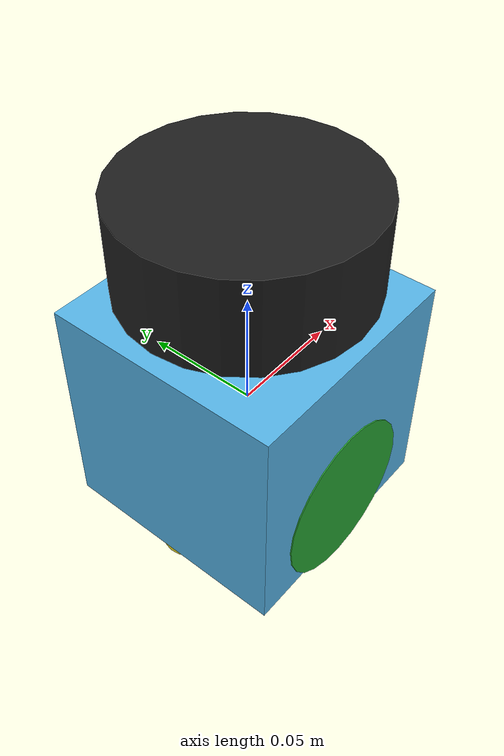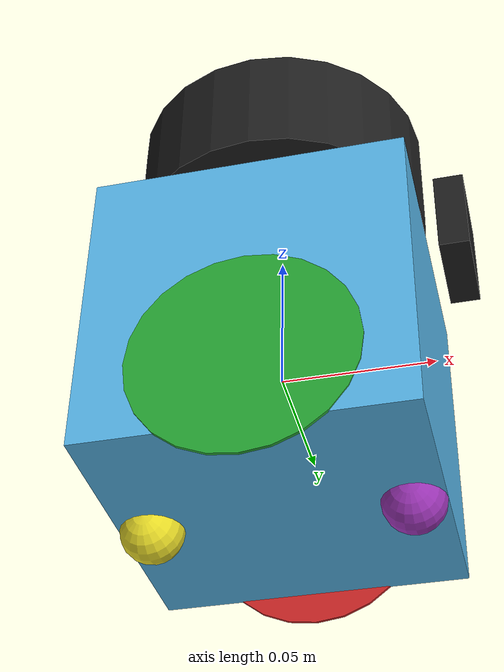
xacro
<?xml version="1.0"?>
<robot xmlns:xacro="http://www.ros.org/wiki/xacro" name="my_robot">
    <xacro:arg name='robot_name' default='my_robot'/>
    <xacro:property name='robot_name' value='$(arg robot_name)'/>
    <xacro:include filename="$(find my_robot_description)/urdf/my_robot.gazebo.xacro" />

    <xacro:property name="body_width" value="0.1"/>
    <xacro:property name="body_lenght" value="0.1"/>
    <xacro:property name="body_height" value="0.1"/>
    <xacro:property name="wheel_width" value="0.001"/>
    <xacro:property name="wheel_radius" value="0.035"/>

    <xacro:gazebo_elements robot_name='${robot_name}'/>

    <link name="base_link">
    </link>

    <joint name="base_link_joint" type="fixed">
        <origin rpy="0 0 0" xyz="0 0 0" />
        <parent link="base_link" />
        <child link="chassis" />
    </joint>

    <link name="chassis">
        <visual>
            <geometry>
                <box size="${body_width} ${body_lenght} ${body_height}"/>
            </geometry>
        </visual>

        <collision>
            <geometry>
                <box size="${body_width} ${body_lenght} ${body_height}"/>
            </geometry>
        </collision>

        <inertial>
            <mass value="0.5"/>
            <origin rpy="0 0 0" xyz="0 0 0"/>
            <inertia ixx="0.0008333333333333335" ixy="0" ixz="0" iyy="0.0008333333333333335" iyz="0" izz="0.0008333333333333335"/>
        </inertial>
    </link>

    <link name='camera_link'>
        <visual>
            <geometry>
                <box size='0.01 0.03 0.03'/>
            </geometry>
        </visual>
    </link>

    <joint name='camera_joint' type='fixed'>
        <parent link='chassis'/>
        <child link='camera_link'/>
        <origin xyz='0.06 0 0.05' rpy='0 0 0'/>
    </joint>

    <link name="laser_link">
        <visual>
            <geometry>
                <cylinder radius="0.05" length="0.04"/> </geometry>
            <material name="black"/>
        </visual>
        <collision>
            <geometry>
                <cylinder radius="0.05" length="0.04"/>
            </geometry>
        </collision>
        <inertial>
            <mass value="0.1"/>
            <inertia ixx="0.000075833" ixy="0" ixz="0" iyy="0.000075833" iyz="0" izz="0.000125"/>
        </inertial>
    </link>

    <joint name="laser_joint" type="fixed">
        <parent link="chassis"/>
        <child link="laser_link"/>
        <origin xyz="0 0 0.08" rpy="0 0 0"/>
    </joint>

    <!-- Wheel Macro -->
    <xacro:macro name="wheel" params="wheel_name">
        <link name="${wheel_name}">
            <visual>
                <origin rpy="0 1.5707 1.5707" xyz="0 0 0"/>
                <geometry>
                    <cylinder length="${wheel_width}" radius="${wheel_radius}"/>
                </geometry>
            </visual>

            <collision>
                <origin rpy="0 1.5707 1.5707" xyz="0 0 0"/>
                <geometry>
                    <cylinder length="${wheel_width}" radius="${wheel_radius}"/>
                </geometry>
            </collision>

            <inertial>
                <origin rpy="0 1.5707 1.5707" xyz="0 0 0"/>
                <mass value="0.05"/>
                <inertia ixx="1.531666666666667e-05" ixy="0" ixz="0" iyy="1.531666666666667e-05" iyz="0" izz="3.0625000000000006e-05"/>
            </inertial>
        </link>
    </xacro:macro>

    <!-- Wheel Left -->
    <xacro:wheel wheel_name="left_wheel" />

    <!-- Wheel Right -->
    <xacro:wheel wheel_name="right_wheel" />

    <joint name="joint_left_wheel" type="continuous">
        <origin rpy="0 0 0" xyz="0 0.05 -0.025"/>
        <child link="left_wheel"/>
        <parent link="chassis"/>
        <axis rpy="0 0 0" xyz="0 1 0"/>
        <limit effort="10000" velocity="1000"/>
        <joint_properties damping="1.0" friction="1.0"/>
    </joint>

    <joint name="joint_right_wheel" type="continuous">
        <origin rpy="0 0 0" xyz="0 -0.05 -0.025"/>
        <child link="right_wheel"/>
        <parent link="chassis"/>
        <axis rpy="0 0 0" xyz="0 1 0"/>
        <limit effort="10000" velocity="1000"/>
        <joint_properties damping="1.0" friction="1.0"/>
    </joint>

    <!-- Caster Wheel Front -->
    <link name="front_yaw_link">
        <visual>
            <origin rpy="0 1.5707 1.5707" xyz="0 0 0"/>
            <geometry>
                <cylinder length="0.001" radius="0.0045000000000000005"/>
            </geometry>
        </visual>

        <collision>
            <origin rpy="0 1.5707 1.5707" xyz="0 0 0"/>
            <geometry>
                <cylinder length="0.001" radius="0.0045000000000000005"/>
            </geometry>
        </collision>

        <inertial>
            <origin rpy="0 1.5707 1.5707" xyz="0 0 0"/>
            <mass value="0.001"/>
            <inertia ixx="5.145833333333334e-09" ixy="0" ixz="0" iyy="5.145833333333334e-09" iyz="0" izz="1.0125000000000003e-08"/>
        </inertial>

    </link>

    <joint name="front_yaw_joint" type="continuous">
        <origin rpy="0 0 0" xyz="0.04 0 -0.05" />
        <parent link="chassis" />
        <child link="front_yaw_link" />
        <axis xyz="0 0 1" />
        <limit effort="1000.0" velocity="100.0" />
        <dynamics damping="0.0" friction="0.1"/>
    </joint>

    <link name="front_roll_link">
        <visual>
            <origin rpy="0 1.5707 1.5707" xyz="0 0 0"/>
            <geometry>
                <cylinder length="0.001" radius="0.0045000000000000005"/>
            </geometry>
        </visual>

        <collision>
            <origin rpy="0 1.5707 1.5707" xyz="0 0 0"/>
            <geometry>
                <cylinder length="0.001" radius="0.0045000000000000005"/>
            </geometry>
        </collision>

        <inertial>
            <origin rpy="0 1.5707 1.5707" xyz="0 0 0"/>
            <mass value="0.001"/>
            <inertia ixx="5.145833333333334e-09" ixy="0" ixz="0" iyy="5.145833333333334e-09" iyz="0" izz="1.0125000000000003e-08"/>
        </inertial>
    </link>

    <joint name="front_roll_joint" type="continuous">
        <origin rpy="0 0 0" xyz="0 0 0" />
        <parent link="front_yaw_link" />
        <child link="front_roll_link" />
        <axis xyz="1 0 0" />
        <limit effort="1000.0" velocity="100.0" />
        <dynamics damping="0.0" friction="0.1"/>
    </joint>

    <link name="front_pitch_link">
        <visual>
            <origin rpy="0 1.5707 1.5707" xyz="0 0 0"/>
            <geometry>
                <sphere radius="0.010"/>
            </geometry>
        </visual>

        <collision>
            <origin rpy="0 1.5707 1.5707" xyz="0 0 0"/>
            <geometry>
                <sphere radius="0.010"/>
            </geometry>
        </collision>

        <inertial>
            <origin rpy="0 1.5707 1.5707" xyz="0 0 0"/>
            <mass value="0.001"/>
            <inertia ixx="4e-08" ixy="0" ixz="0" iyy="4e-08" iyz="0" izz="4e-08"/>
        </inertial>
    </link>

    <joint name="front_pitch_joint" type="continuous">
        <origin rpy="0 0 0" xyz="0 0 0" />
        <parent link="front_roll_link" />
        <child link="front_pitch_link" />
        <axis xyz="0 1 0" />
        <limit effort="1000.0" velocity="100.0" />
        <dynamics damping="0.0" friction="0.1"/>
    </joint>

    <!-- Caster Wheel Back -->
    <link name="back_yaw_link">
        <visual>
            <origin rpy="0 1.5707 1.5707" xyz="0 0 0"/>
            <geometry>
                <cylinder length="0.001" radius="0.0045000000000000005"/>
            </geometry>
        </visual>

        <collision>
            <origin rpy="0 1.5707 1.5707" xyz="0 0 0"/>
            <geometry>
                <cylinder length="0.001" radius="0.0045000000000000005"/>
            </geometry>
        </collision>

        <inertial>
            <origin rpy="0 1.5707 1.5707" xyz="0 0 0"/>
            <mass value="0.001"/>
            <inertia ixx="5.145833333333334e-09" ixy="0" ixz="0" iyy="5.145833333333334e-09" iyz="0" izz="1.0125000000000003e-08"/>
        </inertial>
    </link>

    <joint name="back_yaw_joint" type="continuous">
        <origin rpy="0 0 0" xyz="-0.04 0 -0.05" />
        <parent link="chassis" />
        <child link="back_yaw_link" />
        <axis xyz="0 0 1" />
        <limit effort="1000.0" velocity="100.0" />
        <dynamics damping="0.0" friction="0.1"/>
    </joint>

    <link name="back_roll_link">
        <visual>
            <origin rpy="0 1.5707 1.5707" xyz="0 0 0"/>
            <geometry>
                <cylinder length="0.001" radius="0.0045000000000000005"/>
            </geometry>
        </visual>

        <collision>
            <origin rpy="0 1.5707 1.5707" xyz="0 0 0"/>
            <geometry>
                <cylinder length="0.001" radius="0.0045000000000000005"/>
            </geometry>
        </collision>

        <inertial>
            <origin rpy="0 1.5707 1.5707" xyz="0 0 0"/>
            <mass value="0.001"/>
            <inertia ixx="5.145833333333334e-09" ixy="0" ixz="0" iyy="5.145833333333334e-09" iyz="0" izz="1.0125000000000003e-08"/>
        </inertial>
    </link>

    <joint name="back_roll_joint" type="continuous">
        <origin rpy="0 0 0" xyz="0 0 0" />
        <parent link="back_yaw_link" />
        <child link="back_roll_link" />
        <axis xyz="1 0 0" />
        <limit effort="1000.0" velocity="100.0" />
        <dynamics damping="0.0" friction="0.1"/>
    </joint>

    <link name="back_pitch_link">
        <visual>
            <origin rpy="0 1.5707 1.5707" xyz="0 0 0"/>
            <geometry>
                <sphere radius="0.010"/>
            </geometry>
        </visual>

        <collision>
            <origin rpy="0 1.5707 1.5707" xyz="0 0 0"/>
            <geometry>
                <sphere radius="0.010"/>
            </geometry>
        </collision>

        <inertial>
            <origin rpy="0 1.5707 1.5707" xyz="0 0 0"/>
            <mass value="0.001"/>
            <inertia ixx="4e-08" ixy="0" ixz="0" iyy="4e-08" iyz="0" izz="4e-08"/>
        </inertial>
    </link>

    <joint name="back_pitch_joint" type="continuous">
        <origin rpy="0 0 0" xyz="0 0 0" />
        <parent link="back_roll_link" />
        <child link="back_pitch_link" />
        <axis xyz="0 1 0" />
        <limit effort="1000.0" velocity="100.0" />
        <dynamics damping="0.0" friction="0.1"/>
    </joint>
</robot>
